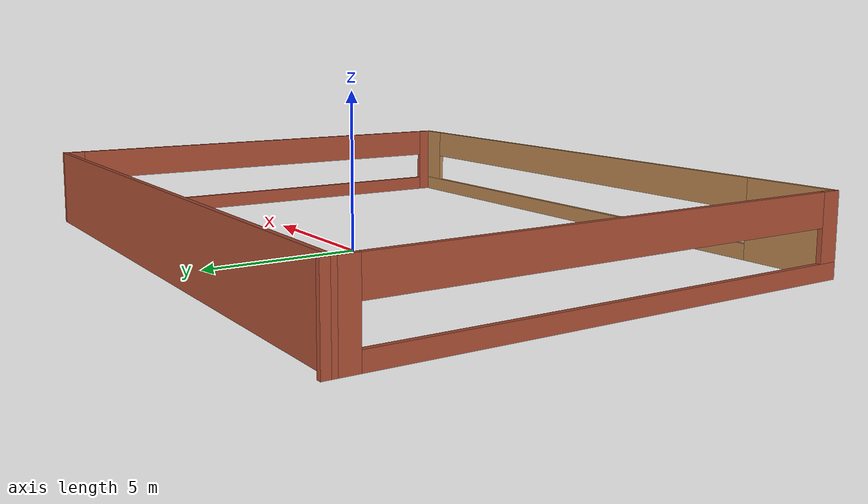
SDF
<?xml version='1.0'?>
<sdf version='1.6'>
  <model name='model'>
    <pose frame=''>-0.182683 -1.4643 0 0 -0 0</pose>
    <link name='Wall_23'>
      <pose frame=''>-10.05 -0 0 0 -0 -1.5708</pose>
      <visual name='Wall_23_Visual_0'>
        <pose frame=''>-7.52852 0 1.25 0 -0 0</pose>
        <geometry>
          <box>
            <size>0.942953 0.15 2.5</size>
          </box>
        </geometry>
        <material>
          <script>
            <uri>file://media/materials/scripts/gazebo.material</uri>
            <name>Gazebo/Bricks</name>
          </script>
          <ambient>1 1 1 1</ambient>
        </material>
        <meta>
          <layer>0</layer>
        </meta>
      </visual>
      <collision name='Wall_23_Collision_0'>
        <geometry>
          <box>
            <size>0.942953 0.15 2.5</size>
          </box>
        </geometry>
        <pose frame=''>-7.52852 0 1.25 0 -0 0</pose>
      </collision>
      <visual name='Wall_23_Visual_1'>
        <pose frame=''>0.471476 0 0.25 0 -0 0</pose>
        <geometry>
          <box>
            <size>15.057 0.15 0.5</size>
          </box>
        </geometry>
        <material>
          <script>
            <uri>file://media/materials/scripts/gazebo.material</uri>
            <name>Gazebo/Bricks</name>
          </script>
          <ambient>1 1 1 1</ambient>
        </material>
        <meta>
          <layer>0</layer>
        </meta>
      </visual>
      <collision name='Wall_23_Collision_1'>
        <geometry>
          <box>
            <size>15.057 0.15 0.5</size>
          </box>
        </geometry>
        <pose frame=''>0.471476 0 0.25 0 -0 0</pose>
      </collision>
      <visual name='Wall_23_Visual_2'>
        <pose frame=''>7.68848 0 1.5 0 -0 0</pose>
        <geometry>
          <box>
            <size>0.623047 0.15 2</size>
          </box>
        </geometry>
        <material>
          <script>
            <uri>file://media/materials/scripts/gazebo.material</uri>
            <name>Gazebo/Bricks</name>
          </script>
          <ambient>1 1 1 1</ambient>
        </material>
        <meta>
          <layer>0</layer>
        </meta>
      </visual>
      <collision name='Wall_23_Collision_2'>
        <geometry>
          <box>
            <size>0.623047 0.15 2</size>
          </box>
        </geometry>
        <pose frame=''>7.68848 0 1.5 0 -0 0</pose>
      </collision>
      <visual name='Wall_23_Visual_3'>
        <pose frame=''>0.159953 0 2 0 -0 0</pose>
        <geometry>
          <box>
            <size>14.434 0.15 1</size>
          </box>
        </geometry>
        <material>
          <script>
            <uri>file://media/materials/scripts/gazebo.material</uri>
            <name>Gazebo/Bricks</name>
          </script>
          <ambient>1 1 1 1</ambient>
        </material>
        <meta>
          <layer>0</layer>
        </meta>
      </visual>
      <collision name='Wall_23_Collision_3'>
        <geometry>
          <box>
            <size>14.434 0.15 1</size>
          </box>
        </geometry>
        <pose frame=''>0.159953 0 2 0 -0 0</pose>
      </collision>
    </link>
    <link name='Wall_24'>
      <pose frame=''>0 -7.925 0 0 -0 0</pose>
      <visual name='Wall_24_Visual_0'>
        <pose frame=''>-8.6423 0 1.25 0 -0 0</pose>
        <geometry>
          <box>
            <size>2.96541 0.15 2.5</size>
          </box>
        </geometry>
        <material>
          <script>
            <uri>file://media/materials/scripts/gazebo.material</uri>
            <name>Gazebo/Wood</name>
          </script>
          <ambient>1 1 1 1</ambient>
        </material>
        <meta>
          <layer>0</layer>
        </meta>
      </visual>
      <collision name='Wall_24_Collision_0'>
        <geometry>
          <box>
            <size>2.96541 0.15 2.5</size>
          </box>
        </geometry>
        <pose frame=''>-8.6423 0 1.25 0 -0 0</pose>
      </collision>
      <visual name='Wall_24_Visual_1'>
        <pose frame=''>1.4827 0 0.25 0 -0 0</pose>
        <geometry>
          <box>
            <size>17.2846 0.15 0.5</size>
          </box>
        </geometry>
        <material>
          <script>
            <uri>file://media/materials/scripts/gazebo.material</uri>
            <name>Gazebo/Wood</name>
          </script>
          <ambient>1 1 1 1</ambient>
        </material>
        <meta>
          <layer>0</layer>
        </meta>
      </visual>
      <collision name='Wall_24_Collision_1'>
        <geometry>
          <box>
            <size>17.2846 0.15 0.5</size>
          </box>
        </geometry>
        <pose frame=''>1.4827 0 0.25 0 -0 0</pose>
      </collision>
      <visual name='Wall_24_Visual_2'>
        <pose frame=''>9.5912 0 1.5 0 -0 0</pose>
        <geometry>
          <box>
            <size>1.06759 0.15 2</size>
          </box>
        </geometry>
        <material>
          <script>
            <uri>file://media/materials/scripts/gazebo.material</uri>
            <name>Gazebo/Wood</name>
          </script>
          <ambient>1 1 1 1</ambient>
        </material>
        <meta>
          <layer>0</layer>
        </meta>
      </visual>
      <collision name='Wall_24_Collision_2'>
        <geometry>
          <box>
            <size>1.06759 0.15 2</size>
          </box>
        </geometry>
        <pose frame=''>9.5912 0 1.5 0 -0 0</pose>
      </collision>
      <visual name='Wall_24_Visual_3'>
        <pose frame=''>0.948908 0 2 0 -0 0</pose>
        <geometry>
          <box>
            <size>16.217 0.15 1</size>
          </box>
        </geometry>
        <material>
          <script>
            <uri>file://media/materials/scripts/gazebo.material</uri>
            <name>Gazebo/Wood</name>
          </script>
          <ambient>1 1 1 1</ambient>
        </material>
        <meta>
          <layer>0</layer>
        </meta>
      </visual>
      <collision name='Wall_24_Collision_3'>
        <geometry>
          <box>
            <size>16.217 0.15 1</size>
          </box>
        </geometry>
        <pose frame=''>0.948908 0 2 0 -0 0</pose>
      </collision>
    </link>
    <link name='Wall_25'>
      <pose frame=''>10.05 -0.125 0 0 -0 1.5708</pose>
      <visual name='Wall_25_Visual_0'>
        <pose frame=''>-7.58359 0 1.25 0 -0 0</pose>
        <geometry>
          <box>
            <size>0.582827 0.15 2.5</size>
          </box>
        </geometry>
        <material>
          <script>
            <uri>file://media/materials/scripts/gazebo.material</uri>
            <name>Gazebo/Bricks</name>
          </script>
          <ambient>1 1 1 1</ambient>
        </material>
        <meta>
          <layer>0</layer>
        </meta>
      </visual>
      <collision name='Wall_25_Collision_0'>
        <geometry>
          <box>
            <size>0.582827 0.15 2.5</size>
          </box>
        </geometry>
        <pose frame=''>-7.58359 0 1.25 0 -0 0</pose>
      </collision>
      <visual name='Wall_25_Visual_1'>
        <pose frame=''>0.291414 0 0.25 0 -0 0</pose>
        <geometry>
          <box>
            <size>15.1672 0.15 0.5</size>
          </box>
        </geometry>
        <material>
          <script>
            <uri>file://media/materials/scripts/gazebo.material</uri>
            <name>Gazebo/Bricks</name>
          </script>
          <ambient>1 1 1 1</ambient>
        </material>
        <meta>
          <layer>0</layer>
        </meta>
      </visual>
      <collision name='Wall_25_Collision_1'>
        <geometry>
          <box>
            <size>15.1672 0.15 0.5</size>
          </box>
        </geometry>
        <pose frame=''>0.291414 0 0.25 0 -0 0</pose>
      </collision>
      <visual name='Wall_25_Visual_2'>
        <pose frame=''>7.50818 0 1.5 0 -0 0</pose>
        <geometry>
          <box>
            <size>0.733643 0.15 2</size>
          </box>
        </geometry>
        <material>
          <script>
            <uri>file://media/materials/scripts/gazebo.material</uri>
            <name>Gazebo/Bricks</name>
          </script>
          <ambient>1 1 1 1</ambient>
        </material>
        <meta>
          <layer>0</layer>
        </meta>
      </visual>
      <collision name='Wall_25_Collision_2'>
        <geometry>
          <box>
            <size>0.733643 0.15 2</size>
          </box>
        </geometry>
        <pose frame=''>7.50818 0 1.5 0 -0 0</pose>
      </collision>
      <visual name='Wall_25_Visual_3'>
        <pose frame=''>-0.075408 0 2 0 -0 0</pose>
        <geometry>
          <box>
            <size>14.4335 0.15 1</size>
          </box>
        </geometry>
        <material>
          <script>
            <uri>file://media/materials/scripts/gazebo.material</uri>
            <name>Gazebo/Bricks</name>
          </script>
          <ambient>1 1 1 1</ambient>
        </material>
        <meta>
          <layer>0</layer>
        </meta>
      </visual>
      <collision name='Wall_25_Collision_3'>
        <geometry>
          <box>
            <size>14.4335 0.15 1</size>
          </box>
        </geometry>
        <pose frame=''>-0.075408 0 2 0 -0 0</pose>
      </collision>
    </link>
    <link name='Wall_28'>
      <collision name='Wall_28_Collision'>
        <geometry>
          <box>
            <size>20.25 0.15 2.5</size>
          </box>
        </geometry>
        <pose frame=''>0 0 1.25 0 -0 0</pose>
      </collision>
      <visual name='Wall_28_Visual'>
        <pose frame=''>0 0 1.25 0 -0 0</pose>
        <geometry>
          <box>
            <size>20.25 0.15 2.5</size>
          </box>
        </geometry>
        <material>
          <script>
            <uri>file://media/materials/scripts/gazebo.material</uri>
            <name>Gazebo/Bricks</name>
          </script>
          <ambient>1 0.764706 0.305882 1</ambient>
        </material>
        <meta>
          <layer>0</layer>
        </meta>
      </visual>
      <pose frame=''>0 7.675 0 0 -0 3.14159</pose>
    </link>
    <static>1</static>
  </model>
</sdf>
